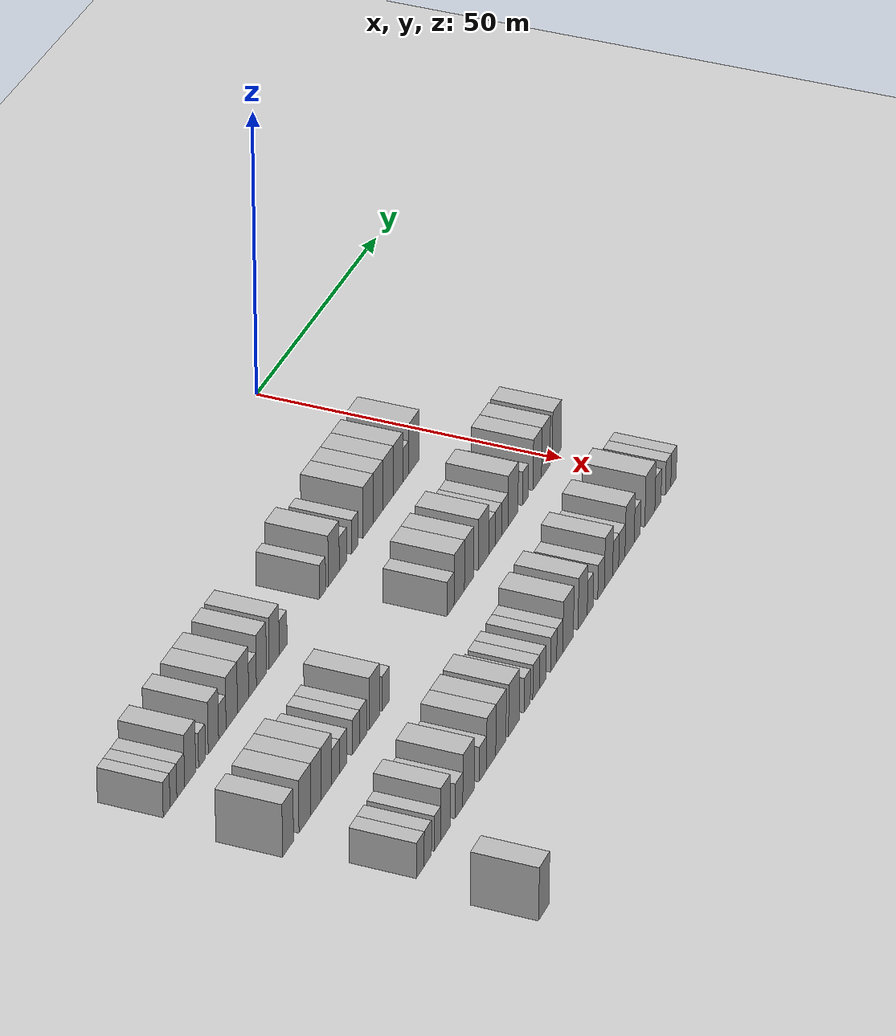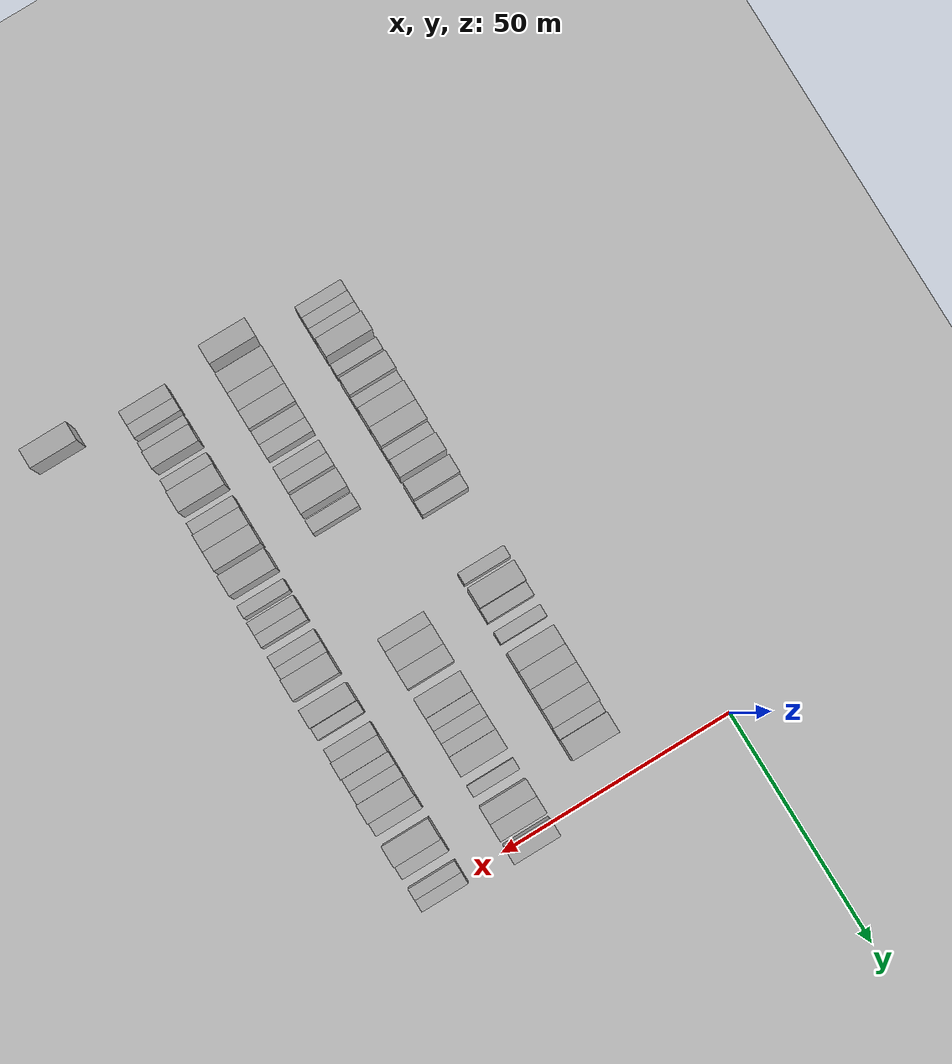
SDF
<sdf version="1.6">
 <world name="default">
  <include><name>ground_plane_1</name><uri>model://HANNAS_ground_plane</uri></include>
  <model name="building_67">
   <static>1</static>
   <pose>25.0000 -105.3900 0 0.000000 0.000000 0.000000</pose>
   <link name="link">
    <pose>0 0 3.00 0 0 0</pose>
    <collision name="collision"><geometry><box><size>10.0000 2.4034 6.0000</size></box></geometry></collision>
    <visual name="visual">
     <cast_shadows>0</cast_shadows>
     <geometry><box><size>10.0000 2.4034 6.0000</size></box></geometry>
     <material>
      <script>
       <uri>model://HANNAS_wall/materials/scripts</uri>
       <uri>model://HANNAS_wall/materials/textures</uri>
       <name>vrc/HANNAS_wall</name>
      </script>
     </material>
    </visual>
   </link>
  </model>
  <model name="building_68">
   <static>1</static>
   <pose>25.0000 -102.9690 0 0.000000 0.000000 0.000000</pose>
   <link name="link">
    <pose>0 0 3.00 0 0 0</pose>
    <collision name="collision"><geometry><box><size>10.0000 2.4385 6.0000</size></box></geometry></collision>
    <visual name="visual">
     <cast_shadows>0</cast_shadows>
     <geometry><box><size>10.0000 2.4385 6.0000</size></box></geometry>
     <material>
      <script>
       <uri>model://HANNAS_wall/materials/scripts</uri>
       <uri>model://HANNAS_wall/materials/textures</uri>
       <name>vrc/HANNAS_wall</name>
      </script>
     </material>
    </visual>
   </link>
  </model>
  <model name="building_69">
   <static>1</static>
   <pose>25.0000 -100.3519 0 0.000000 0.000000 0.000000</pose>
   <link name="link">
    <pose>0 0 3.00 0 0 0</pose>
    <collision name="collision"><geometry><box><size>10.0000 2.7957 6.0000</size></box></geometry></collision>
    <visual name="visual">
     <cast_shadows>0</cast_shadows>
     <geometry><box><size>10.0000 2.7957 6.0000</size></box></geometry>
     <material>
      <script>
       <uri>model://HANNAS_wall/materials/scripts</uri>
       <uri>model://HANNAS_wall/materials/textures</uri>
       <name>vrc/HANNAS_wall</name>
      </script>
     </material>
    </visual>
   </link>
  </model>
  <model name="building_70">
   <static>1</static>
   <pose>25.0000 -96.9507 0 0.000000 0.000000 0.000000</pose>
   <link name="link">
    <pose>0 0 4.50 0 0 0</pose>
    <collision name="collision"><geometry><box><size>10.0000 4.0066 9.0000</size></box></geometry></collision>
    <visual name="visual">
     <cast_shadows>0</cast_shadows>
     <geometry><box><size>10.0000 4.0066 9.0000</size></box></geometry>
     <material>
      <script>
       <uri>model://HANNAS_wall/materials/scripts</uri>
       <uri>model://HANNAS_wall/materials/textures</uri>
       <name>vrc/HANNAS_wall</name>
      </script>
     </material>
    </visual>
   </link>
  </model>
  <model name="building_71">
   <static>1</static>
   <pose>25.0000 -92.6870 0 0.000000 0.000000 0.000000</pose>
   <link name="link">
    <pose>0 0 3.00 0 0 0</pose>
    <collision name="collision"><geometry><box><size>10.0000 2.5209 6.0000</size></box></geometry></collision>
    <visual name="visual">
     <cast_shadows>0</cast_shadows>
     <geometry><box><size>10.0000 2.5209 6.0000</size></box></geometry>
     <material>
      <script>
       <uri>model://HANNAS_wall/materials/scripts</uri>
       <uri>model://HANNAS_wall/materials/textures</uri>
       <name>vrc/HANNAS_wall</name>
      </script>
     </material>
    </visual>
   </link>
  </model>
  <model name="building_72">
   <static>1</static>
   <pose>25.0000 -88.5406 0 0.000000 0.000000 0.000000</pose>
   <link name="link">
    <pose>0 0 4.50 0 0 0</pose>
    <collision name="collision"><geometry><box><size>10.0000 3.7719 9.0000</size></box></geometry></collision>
    <visual name="visual">
     <cast_shadows>0</cast_shadows>
     <geometry><box><size>10.0000 3.7719 9.0000</size></box></geometry>
     <material>
      <script>
       <uri>model://HANNAS_wall/materials/scripts</uri>
       <uri>model://HANNAS_wall/materials/textures</uri>
       <name>vrc/HANNAS_wall</name>
      </script>
     </material>
    </visual>
   </link>
  </model>
  <model name="building_73">
   <static>1</static>
   <pose>25.0000 -85.2821 0 0.000000 0.000000 0.000000</pose>
   <link name="link">
    <pose>0 0 3.00 0 0 0</pose>
    <collision name="collision"><geometry><box><size>10.0000 2.7451 6.0000</size></box></geometry></collision>
    <visual name="visual">
     <cast_shadows>0</cast_shadows>
     <geometry><box><size>10.0000 2.7451 6.0000</size></box></geometry>
     <material>
      <script>
       <uri>model://HANNAS_wall/materials/scripts</uri>
       <uri>model://HANNAS_wall/materials/textures</uri>
       <name>vrc/HANNAS_wall</name>
      </script>
     </material>
    </visual>
   </link>
  </model>
  <model name="building_74">
   <static>1</static>
   <pose>25.0000 -81.8021 0 0.000000 0.000000 0.000000</pose>
   <link name="link">
    <pose>0 0 4.50 0 0 0</pose>
    <collision name="collision"><geometry><box><size>10.0000 4.2150 9.0000</size></box></geometry></collision>
    <visual name="visual">
     <cast_shadows>0</cast_shadows>
     <geometry><box><size>10.0000 4.2150 9.0000</size></box></geometry>
     <material>
      <script>
       <uri>model://HANNAS_wall/materials/scripts</uri>
       <uri>model://HANNAS_wall/materials/textures</uri>
       <name>vrc/HANNAS_wall</name>
      </script>
     </material>
    </visual>
   </link>
  </model>
  <model name="building_75">
   <static>1</static>
   <pose>25.0000 -77.6193 0 0.000000 0.000000 0.000000</pose>
   <link name="link">
    <pose>0 0 4.50 0 0 0</pose>
    <collision name="collision"><geometry><box><size>10.0000 4.1505 9.0000</size></box></geometry></collision>
    <visual name="visual">
     <cast_shadows>0</cast_shadows>
     <geometry><box><size>10.0000 4.1505 9.0000</size></box></geometry>
     <material>
      <script>
       <uri>model://HANNAS_wall/materials/scripts</uri>
       <uri>model://HANNAS_wall/materials/textures</uri>
       <name>vrc/HANNAS_wall</name>
      </script>
     </material>
    </visual>
   </link>
  </model>
  <model name="building_76">
   <static>1</static>
   <pose>25.0000 -74.0915 0 0.000000 0.000000 0.000000</pose>
   <link name="link">
    <pose>0 0 3.00 0 0 0</pose>
    <collision name="collision"><geometry><box><size>10.0000 2.9051 6.0000</size></box></geometry></collision>
    <visual name="visual">
     <cast_shadows>0</cast_shadows>
     <geometry><box><size>10.0000 2.9051 6.0000</size></box></geometry>
     <material>
      <script>
       <uri>model://HANNAS_wall/materials/scripts</uri>
       <uri>model://HANNAS_wall/materials/textures</uri>
       <name>vrc/HANNAS_wall</name>
      </script>
     </material>
    </visual>
   </link>
  </model>
  <model name="building_77">
   <static>1</static>
   <pose>25.0000 -70.7532 0 0.000000 0.000000 0.000000</pose>
   <link name="link">
    <pose>0 0 4.50 0 0 0</pose>
    <collision name="collision"><geometry><box><size>10.0000 3.7714 9.0000</size></box></geometry></collision>
    <visual name="visual">
     <cast_shadows>0</cast_shadows>
     <geometry><box><size>10.0000 3.7714 9.0000</size></box></geometry>
     <material>
      <script>
       <uri>model://HANNAS_wall/materials/scripts</uri>
       <uri>model://HANNAS_wall/materials/textures</uri>
       <name>vrc/HANNAS_wall</name>
      </script>
     </material>
    </visual>
   </link>
  </model>
  <model name="building_78">
   <static>1</static>
   <pose>25.0000 -65.9466 0 0.000000 0.000000 0.000000</pose>
   <link name="link">
    <pose>0 0 4.50 0 0 0</pose>
    <collision name="collision"><geometry><box><size>10.0000 3.8419 9.0000</size></box></geometry></collision>
    <visual name="visual">
     <cast_shadows>0</cast_shadows>
     <geometry><box><size>10.0000 3.8419 9.0000</size></box></geometry>
     <material>
      <script>
       <uri>model://HANNAS_wall/materials/scripts</uri>
       <uri>model://HANNAS_wall/materials/textures</uri>
       <name>vrc/HANNAS_wall</name>
      </script>
     </material>
    </visual>
   </link>
  </model>
  <model name="building_79">
   <static>1</static>
   <pose>25.0000 -62.5279 0 0.000000 0.000000 0.000000</pose>
   <link name="link">
    <pose>0 0 3.00 0 0 0</pose>
    <collision name="collision"><geometry><box><size>10.0000 2.9954 6.0000</size></box></geometry></collision>
    <visual name="visual">
     <cast_shadows>0</cast_shadows>
     <geometry><box><size>10.0000 2.9954 6.0000</size></box></geometry>
     <material>
      <script>
       <uri>model://HANNAS_wall/materials/scripts</uri>
       <uri>model://HANNAS_wall/materials/textures</uri>
       <name>vrc/HANNAS_wall</name>
      </script>
     </material>
    </visual>
   </link>
  </model>
  <model name="building_80">
   <static>1</static>
   <pose>25.0000 -47.3221 0 0.000000 0.000000 0.000000</pose>
   <link name="link">
    <pose>0 0 3.00 0 0 0</pose>
    <collision name="collision"><geometry><box><size>10.0000 2.4721 6.0000</size></box></geometry></collision>
    <visual name="visual">
     <cast_shadows>0</cast_shadows>
     <geometry><box><size>10.0000 2.4721 6.0000</size></box></geometry>
     <material>
      <script>
       <uri>model://HANNAS_wall/materials/scripts</uri>
       <uri>model://HANNAS_wall/materials/textures</uri>
       <name>vrc/HANNAS_wall</name>
      </script>
     </material>
    </visual>
   </link>
  </model>
  <model name="building_81">
   <static>1</static>
   <pose>25.0000 -42.9015 0 0.000000 0.000000 0.000000</pose>
   <link name="link">
    <pose>0 0 4.50 0 0 0</pose>
    <collision name="collision"><geometry><box><size>10.0000 4.3690 9.0000</size></box></geometry></collision>
    <visual name="visual">
     <cast_shadows>0</cast_shadows>
     <geometry><box><size>10.0000 4.3690 9.0000</size></box></geometry>
     <material>
      <script>
       <uri>model://HANNAS_wall/materials/scripts</uri>
       <uri>model://HANNAS_wall/materials/textures</uri>
       <name>vrc/HANNAS_wall</name>
      </script>
     </material>
    </visual>
   </link>
  </model>
  <model name="building_82">
   <static>1</static>
   <pose>25.0000 -39.2447 0 0.000000 0.000000 0.000000</pose>
   <link name="link">
    <pose>0 0 3.00 0 0 0</pose>
    <collision name="collision"><geometry><box><size>10.0000 2.9447 6.0000</size></box></geometry></collision>
    <visual name="visual">
     <cast_shadows>0</cast_shadows>
     <geometry><box><size>10.0000 2.9447 6.0000</size></box></geometry>
     <material>
      <script>
       <uri>model://HANNAS_wall/materials/scripts</uri>
       <uri>model://HANNAS_wall/materials/textures</uri>
       <name>vrc/HANNAS_wall</name>
      </script>
     </material>
    </visual>
   </link>
  </model>
  <model name="building_83">
   <static>1</static>
   <pose>25.0000 -34.4802 0 0.000000 0.000000 0.000000</pose>
   <link name="link">
    <pose>0 0 3.00 0 0 0</pose>
    <collision name="collision"><geometry><box><size>10.0000 2.5842 6.0000</size></box></geometry></collision>
    <visual name="visual">
     <cast_shadows>0</cast_shadows>
     <geometry><box><size>10.0000 2.5842 6.0000</size></box></geometry>
     <material>
      <script>
       <uri>model://HANNAS_wall/materials/scripts</uri>
       <uri>model://HANNAS_wall/materials/textures</uri>
       <name>vrc/HANNAS_wall</name>
      </script>
     </material>
    </visual>
   </link>
  </model>
  <model name="building_84">
   <static>1</static>
   <pose>25.0000 -29.1527 0 0.000000 0.000000 0.000000</pose>
   <link name="link">
    <pose>0 0 4.50 0 0 0</pose>
    <collision name="collision"><geometry><box><size>10.0000 4.0708 9.0000</size></box></geometry></collision>
    <visual name="visual">
     <cast_shadows>0</cast_shadows>
     <geometry><box><size>10.0000 4.0708 9.0000</size></box></geometry>
     <material>
      <script>
       <uri>model://HANNAS_wall/materials/scripts</uri>
       <uri>model://HANNAS_wall/materials/textures</uri>
       <name>vrc/HANNAS_wall</name>
      </script>
     </material>
    </visual>
   </link>
  </model>
  <model name="building_85">
   <static>1</static>
   <pose>25.0000 -25.1547 0 0.000000 0.000000 0.000000</pose>
   <link name="link">
    <pose>0 0 4.50 0 0 0</pose>
    <collision name="collision"><geometry><box><size>10.0000 3.9250 9.0000</size></box></geometry></collision>
    <visual name="visual">
     <cast_shadows>0</cast_shadows>
     <geometry><box><size>10.0000 3.9250 9.0000</size></box></geometry>
     <material>
      <script>
       <uri>model://HANNAS_wall/materials/scripts</uri>
       <uri>model://HANNAS_wall/materials/textures</uri>
       <name>vrc/HANNAS_wall</name>
      </script>
     </material>
    </visual>
   </link>
  </model>
  <model name="building_86">
   <static>1</static>
   <pose>25.0000 -21.0648 0 0.000000 0.000000 0.000000</pose>
   <link name="link">
    <pose>0 0 4.50 0 0 0</pose>
    <collision name="collision"><geometry><box><size>10.0000 4.2548 9.0000</size></box></geometry></collision>
    <visual name="visual">
     <cast_shadows>0</cast_shadows>
     <geometry><box><size>10.0000 4.2548 9.0000</size></box></geometry>
     <material>
      <script>
       <uri>model://HANNAS_wall/materials/scripts</uri>
       <uri>model://HANNAS_wall/materials/textures</uri>
       <name>vrc/HANNAS_wall</name>
      </script>
     </material>
    </visual>
   </link>
  </model>
  <model name="building_87">
   <static>1</static>
   <pose>25.0000 -16.9578 0 0.000000 0.000000 0.000000</pose>
   <link name="link">
    <pose>0 0 4.50 0 0 0</pose>
    <collision name="collision"><geometry><box><size>10.0000 3.9593 9.0000</size></box></geometry></collision>
    <visual name="visual">
     <cast_shadows>0</cast_shadows>
     <geometry><box><size>10.0000 3.9593 9.0000</size></box></geometry>
     <material>
      <script>
       <uri>model://HANNAS_wall/materials/scripts</uri>
       <uri>model://HANNAS_wall/materials/textures</uri>
       <name>vrc/HANNAS_wall</name>
      </script>
     </material>
    </visual>
   </link>
  </model>
  <model name="building_88">
   <static>1</static>
   <pose>25.0000 -13.7613 0 0.000000 0.000000 0.000000</pose>
   <link name="link">
    <pose>0 0 3.00 0 0 0</pose>
    <collision name="collision"><geometry><box><size>10.0000 2.4338 6.0000</size></box></geometry></collision>
    <visual name="visual">
     <cast_shadows>0</cast_shadows>
     <geometry><box><size>10.0000 2.4338 6.0000</size></box></geometry>
     <material>
      <script>
       <uri>model://HANNAS_wall/materials/scripts</uri>
       <uri>model://HANNAS_wall/materials/textures</uri>
       <name>vrc/HANNAS_wall</name>
      </script>
     </material>
    </visual>
   </link>
  </model>
  <model name="building_89">
   <static>1</static>
   <pose>25.0000 -10.3332 0 0.000000 0.000000 0.000000</pose>
   <link name="link">
    <pose>0 0 4.50 0 0 0</pose>
    <collision name="collision"><geometry><box><size>10.0000 4.4223 9.0000</size></box></geometry></collision>
    <visual name="visual">
     <cast_shadows>0</cast_shadows>
     <geometry><box><size>10.0000 4.4223 9.0000</size></box></geometry>
     <material>
      <script>
       <uri>model://HANNAS_wall/materials/scripts</uri>
       <uri>model://HANNAS_wall/materials/textures</uri>
       <name>vrc/HANNAS_wall</name>
      </script>
     </material>
    </visual>
   </link>
  </model>
  <model name="building_234">
   <static>1</static>
   <pose>44.0000 -107.0728 0 0.000000 0.000000 0.000000</pose>
   <link name="link">
    <pose>0 0 4.50 0 0 0</pose>
    <collision name="collision"><geometry><box><size>10.0000 4.0145 9.0000</size></box></geometry></collision>
    <visual name="visual">
     <cast_shadows>0</cast_shadows>
     <geometry><box><size>10.0000 4.0145 9.0000</size></box></geometry>
     <material>
      <script>
       <uri>model://HANNAS_wall/materials/scripts</uri>
       <uri>model://HANNAS_wall/materials/textures</uri>
       <name>vrc/HANNAS_wall</name>
      </script>
     </material>
    </visual>
   </link>
  </model>
  <model name="building_235">
   <static>1</static>
   <pose>44.0000 -100.8949 0 0.000000 0.000000 0.000000</pose>
   <link name="link">
    <pose>0 0 4.50 0 0 0</pose>
    <collision name="collision"><geometry><box><size>10.0000 4.3414 9.0000</size></box></geometry></collision>
    <visual name="visual">
     <cast_shadows>0</cast_shadows>
     <geometry><box><size>10.0000 4.3414 9.0000</size></box></geometry>
     <material>
      <script>
       <uri>model://HANNAS_wall/materials/scripts</uri>
       <uri>model://HANNAS_wall/materials/textures</uri>
       <name>vrc/HANNAS_wall</name>
      </script>
     </material>
    </visual>
   </link>
  </model>
  <model name="building_236">
   <static>1</static>
   <pose>44.0000 -96.7959 0 0.000000 0.000000 0.000000</pose>
   <link name="link">
    <pose>0 0 4.50 0 0 0</pose>
    <collision name="collision"><geometry><box><size>10.0000 3.8564 9.0000</size></box></geometry></collision>
    <visual name="visual">
     <cast_shadows>0</cast_shadows>
     <geometry><box><size>10.0000 3.8564 9.0000</size></box></geometry>
     <material>
      <script>
       <uri>model://HANNAS_wall/materials/scripts</uri>
       <uri>model://HANNAS_wall/materials/textures</uri>
       <name>vrc/HANNAS_wall</name>
      </script>
     </material>
    </visual>
   </link>
  </model>
  <model name="building_237">
   <static>1</static>
   <pose>44.0000 -92.9147 0 0.000000 0.000000 0.000000</pose>
   <link name="link">
    <pose>0 0 4.50 0 0 0</pose>
    <collision name="collision"><geometry><box><size>10.0000 3.9060 9.0000</size></box></geometry></collision>
    <visual name="visual">
     <cast_shadows>0</cast_shadows>
     <geometry><box><size>10.0000 3.9060 9.0000</size></box></geometry>
     <material>
      <script>
       <uri>model://HANNAS_wall/materials/scripts</uri>
       <uri>model://HANNAS_wall/materials/textures</uri>
       <name>vrc/HANNAS_wall</name>
      </script>
     </material>
    </visual>
   </link>
  </model>
  <model name="building_238">
   <static>1</static>
   <pose>44.0000 -89.4872 0 0.000000 0.000000 0.000000</pose>
   <link name="link">
    <pose>0 0 3.00 0 0 0</pose>
    <collision name="collision"><geometry><box><size>10.0000 2.9491 6.0000</size></box></geometry></collision>
    <visual name="visual">
     <cast_shadows>0</cast_shadows>
     <geometry><box><size>10.0000 2.9491 6.0000</size></box></geometry>
     <material>
      <script>
       <uri>model://HANNAS_wall/materials/scripts</uri>
       <uri>model://HANNAS_wall/materials/textures</uri>
       <name>vrc/HANNAS_wall</name>
      </script>
     </material>
    </visual>
   </link>
  </model>
  <model name="building_239">
   <static>1</static>
   <pose>44.0000 -86.5484 0 0.000000 0.000000 0.000000</pose>
   <link name="link">
    <pose>0 0 3.00 0 0 0</pose>
    <collision name="collision"><geometry><box><size>10.0000 2.9286 6.0000</size></box></geometry></collision>
    <visual name="visual">
     <cast_shadows>0</cast_shadows>
     <geometry><box><size>10.0000 2.9286 6.0000</size></box></geometry>
     <material>
      <script>
       <uri>model://HANNAS_wall/materials/scripts</uri>
       <uri>model://HANNAS_wall/materials/textures</uri>
       <name>vrc/HANNAS_wall</name>
      </script>
     </material>
    </visual>
   </link>
  </model>
  <model name="building_240">
   <static>1</static>
   <pose>44.0000 -81.7106 0 0.000000 0.000000 0.000000</pose>
   <link name="link">
    <pose>0 0 3.00 0 0 0</pose>
    <collision name="collision"><geometry><box><size>10.0000 2.7469 6.0000</size></box></geometry></collision>
    <visual name="visual">
     <cast_shadows>0</cast_shadows>
     <geometry><box><size>10.0000 2.7469 6.0000</size></box></geometry>
     <material>
      <script>
       <uri>model://HANNAS_wall/materials/scripts</uri>
       <uri>model://HANNAS_wall/materials/textures</uri>
       <name>vrc/HANNAS_wall</name>
      </script>
     </material>
    </visual>
   </link>
  </model>
  <model name="building_241">
   <static>1</static>
   <pose>44.0000 -78.9650 0 0.000000 0.000000 0.000000</pose>
   <link name="link">
    <pose>0 0 3.00 0 0 0</pose>
    <collision name="collision"><geometry><box><size>10.0000 2.7444 6.0000</size></box></geometry></collision>
    <visual name="visual">
     <cast_shadows>0</cast_shadows>
     <geometry><box><size>10.0000 2.7444 6.0000</size></box></geometry>
     <material>
      <script>
       <uri>model://HANNAS_wall/materials/scripts</uri>
       <uri>model://HANNAS_wall/materials/textures</uri>
       <name>vrc/HANNAS_wall</name>
      </script>
     </material>
    </visual>
   </link>
  </model>
  <model name="building_242">
   <static>1</static>
   <pose>44.0000 -74.5951 0 0.000000 0.000000 0.000000</pose>
   <link name="link">
    <pose>0 0 4.50 0 0 0</pose>
    <collision name="collision"><geometry><box><size>10.0000 3.9955 9.0000</size></box></geometry></collision>
    <visual name="visual">
     <cast_shadows>0</cast_shadows>
     <geometry><box><size>10.0000 3.9955 9.0000</size></box></geometry>
     <material>
      <script>
       <uri>model://HANNAS_wall/materials/scripts</uri>
       <uri>model://HANNAS_wall/materials/textures</uri>
       <name>vrc/HANNAS_wall</name>
      </script>
     </material>
    </visual>
   </link>
  </model>
  <model name="building_243">
   <static>1</static>
   <pose>44.0000 -70.1585 0 0.000000 0.000000 0.000000</pose>
   <link name="link">
    <pose>0 0 3.00 0 0 0</pose>
    <collision name="collision"><geometry><box><size>10.0000 2.8778 6.0000</size></box></geometry></collision>
    <visual name="visual">
     <cast_shadows>0</cast_shadows>
     <geometry><box><size>10.0000 2.8778 6.0000</size></box></geometry>
     <material>
      <script>
       <uri>model://HANNAS_wall/materials/scripts</uri>
       <uri>model://HANNAS_wall/materials/textures</uri>
       <name>vrc/HANNAS_wall</name>
      </script>
     </material>
    </visual>
   </link>
  </model>
  <model name="building_244">
   <static>1</static>
   <pose>44.0000 -44.3955 0 0.000000 0.000000 0.000000</pose>
   <link name="link">
    <pose>0 0 3.00 0 0 0</pose>
    <collision name="collision"><geometry><box><size>10.0000 2.8827 6.0000</size></box></geometry></collision>
    <visual name="visual">
     <cast_shadows>0</cast_shadows>
     <geometry><box><size>10.0000 2.8827 6.0000</size></box></geometry>
     <material>
      <script>
       <uri>model://HANNAS_wall/materials/scripts</uri>
       <uri>model://HANNAS_wall/materials/textures</uri>
       <name>vrc/HANNAS_wall</name>
      </script>
     </material>
    </visual>
   </link>
  </model>
  <model name="building_245">
   <static>1</static>
   <pose>44.0000 -40.8205 0 0.000000 0.000000 0.000000</pose>
   <link name="link">
    <pose>0 0 4.50 0 0 0</pose>
    <collision name="collision"><geometry><box><size>10.0000 4.2674 9.0000</size></box></geometry></collision>
    <visual name="visual">
     <cast_shadows>0</cast_shadows>
     <geometry><box><size>10.0000 4.2674 9.0000</size></box></geometry>
     <material>
      <script>
       <uri>model://HANNAS_wall/materials/scripts</uri>
       <uri>model://HANNAS_wall/materials/textures</uri>
       <name>vrc/HANNAS_wall</name>
      </script>
     </material>
    </visual>
   </link>
  </model>
  <model name="building_246">
   <static>1</static>
   <pose>44.0000 -36.8082 0 0.000000 0.000000 0.000000</pose>
   <link name="link">
    <pose>0 0 4.50 0 0 0</pose>
    <collision name="collision"><geometry><box><size>10.0000 3.7572 9.0000</size></box></geometry></collision>
    <visual name="visual">
     <cast_shadows>0</cast_shadows>
     <geometry><box><size>10.0000 3.7572 9.0000</size></box></geometry>
     <material>
      <script>
       <uri>model://HANNAS_wall/materials/scripts</uri>
       <uri>model://HANNAS_wall/materials/textures</uri>
       <name>vrc/HANNAS_wall</name>
      </script>
     </material>
    </visual>
   </link>
  </model>
  <model name="building_247">
   <static>1</static>
   <pose>44.0000 -30.7887 0 0.000000 0.000000 0.000000</pose>
   <link name="link">
    <pose>0 0 4.50 0 0 0</pose>
    <collision name="collision"><geometry><box><size>10.0000 4.2819 9.0000</size></box></geometry></collision>
    <visual name="visual">
     <cast_shadows>0</cast_shadows>
     <geometry><box><size>10.0000 4.2819 9.0000</size></box></geometry>
     <material>
      <script>
       <uri>model://HANNAS_wall/materials/scripts</uri>
       <uri>model://HANNAS_wall/materials/textures</uri>
       <name>vrc/HANNAS_wall</name>
      </script>
     </material>
    </visual>
   </link>
  </model>
  <model name="building_248">
   <static>1</static>
   <pose>44.0000 -27.3065 0 0.000000 0.000000 0.000000</pose>
   <link name="link">
    <pose>0 0 3.00 0 0 0</pose>
    <collision name="collision"><geometry><box><size>10.0000 2.6823 6.0000</size></box></geometry></collision>
    <visual name="visual">
     <cast_shadows>0</cast_shadows>
     <geometry><box><size>10.0000 2.6823 6.0000</size></box></geometry>
     <material>
      <script>
       <uri>model://HANNAS_wall/materials/scripts</uri>
       <uri>model://HANNAS_wall/materials/textures</uri>
       <name>vrc/HANNAS_wall</name>
      </script>
     </material>
    </visual>
   </link>
  </model>
  <model name="building_249">
   <static>1</static>
   <pose>44.0000 -24.6082 0 0.000000 0.000000 0.000000</pose>
   <link name="link">
    <pose>0 0 3.00 0 0 0</pose>
    <collision name="collision"><geometry><box><size>10.0000 2.7143 6.0000</size></box></geometry></collision>
    <visual name="visual">
     <cast_shadows>0</cast_shadows>
     <geometry><box><size>10.0000 2.7143 6.0000</size></box></geometry>
     <material>
      <script>
       <uri>model://HANNAS_wall/materials/scripts</uri>
       <uri>model://HANNAS_wall/materials/textures</uri>
       <name>vrc/HANNAS_wall</name>
      </script>
     </material>
    </visual>
   </link>
  </model>
  <model name="building_250">
   <static>1</static>
   <pose>44.0000 -21.8479 0 0.000000 0.000000 0.000000</pose>
   <link name="link">
    <pose>0 0 3.00 0 0 0</pose>
    <collision name="collision"><geometry><box><size>10.0000 2.8063 6.0000</size></box></geometry></collision>
    <visual name="visual">
     <cast_shadows>0</cast_shadows>
     <geometry><box><size>10.0000 2.8063 6.0000</size></box></geometry>
     <material>
      <script>
       <uri>model://HANNAS_wall/materials/scripts</uri>
       <uri>model://HANNAS_wall/materials/textures</uri>
       <name>vrc/HANNAS_wall</name>
      </script>
     </material>
    </visual>
   </link>
  </model>
  <model name="building_251">
   <static>1</static>
   <pose>44.0000 -18.3447 0 0.000000 0.000000 0.000000</pose>
   <link name="link">
    <pose>0 0 4.50 0 0 0</pose>
    <collision name="collision"><geometry><box><size>10.0000 4.2001 9.0000</size></box></geometry></collision>
    <visual name="visual">
     <cast_shadows>0</cast_shadows>
     <geometry><box><size>10.0000 4.2001 9.0000</size></box></geometry>
     <material>
      <script>
       <uri>model://HANNAS_wall/materials/scripts</uri>
       <uri>model://HANNAS_wall/materials/textures</uri>
       <name>vrc/HANNAS_wall</name>
      </script>
     </material>
    </visual>
   </link>
  </model>
  <model name="building_252">
   <static>1</static>
   <pose>44.0000 -13.0252 0 0.000000 0.000000 0.000000</pose>
   <link name="link">
    <pose>0 0 3.00 0 0 0</pose>
    <collision name="collision"><geometry><box><size>10.0000 2.4390 6.0000</size></box></geometry></collision>
    <visual name="visual">
     <cast_shadows>0</cast_shadows>
     <geometry><box><size>10.0000 2.4390 6.0000</size></box></geometry>
     <material>
      <script>
       <uri>model://HANNAS_wall/materials/scripts</uri>
       <uri>model://HANNAS_wall/materials/textures</uri>
       <name>vrc/HANNAS_wall</name>
      </script>
     </material>
    </visual>
   </link>
  </model>
  <model name="building_253">
   <static>1</static>
   <pose>44.0000 -7.9617 0 0.000000 0.000000 0.000000</pose>
   <link name="link">
    <pose>0 0 4.50 0 0 0</pose>
    <collision name="collision"><geometry><box><size>10.0000 3.6881 9.0000</size></box></geometry></collision>
    <visual name="visual">
     <cast_shadows>0</cast_shadows>
     <geometry><box><size>10.0000 3.6881 9.0000</size></box></geometry>
     <material>
      <script>
       <uri>model://HANNAS_wall/materials/scripts</uri>
       <uri>model://HANNAS_wall/materials/textures</uri>
       <name>vrc/HANNAS_wall</name>
      </script>
     </material>
    </visual>
   </link>
  </model>
  <model name="building_254">
   <static>1</static>
   <pose>44.0000 -4.2919 0 0.000000 0.000000 0.000000</pose>
   <link name="link">
    <pose>0 0 4.50 0 0 0</pose>
    <collision name="collision"><geometry><box><size>10.0000 3.6514 9.0000</size></box></geometry></collision>
    <visual name="visual">
     <cast_shadows>0</cast_shadows>
     <geometry><box><size>10.0000 3.6514 9.0000</size></box></geometry>
     <material>
      <script>
       <uri>model://HANNAS_wall/materials/scripts</uri>
       <uri>model://HANNAS_wall/materials/textures</uri>
       <name>vrc/HANNAS_wall</name>
      </script>
     </material>
    </visual>
   </link>
  </model>
  <model name="building_255">
   <static>1</static>
   <pose>44.0000 0.4565 0 0.000000 0.000000 0.000000</pose>
   <link name="link">
    <pose>0 0 4.50 0 0 0</pose>
    <collision name="collision"><geometry><box><size>10.0000 3.8454 9.0000</size></box></geometry></collision>
    <visual name="visual">
     <cast_shadows>0</cast_shadows>
     <geometry><box><size>10.0000 3.8454 9.0000</size></box></geometry>
     <material>
      <script>
       <uri>model://HANNAS_wall/materials/scripts</uri>
       <uri>model://HANNAS_wall/materials/textures</uri>
       <name>vrc/HANNAS_wall</name>
      </script>
     </material>
    </visual>
   </link>
  </model>
  <model name="building_396">
   <static>1</static>
   <pose>63.0000 -105.3975 0 0.000000 0.000000 0.000000</pose>
   <link name="link">
    <pose>0 0 3.00 0 0 0</pose>
    <collision name="collision"><geometry><box><size>10.0000 2.9464 6.0000</size></box></geometry></collision>
    <visual name="visual">
     <cast_shadows>0</cast_shadows>
     <geometry><box><size>10.0000 2.9464 6.0000</size></box></geometry>
     <material>
      <script>
       <uri>model://HANNAS_wall/materials/scripts</uri>
       <uri>model://HANNAS_wall/materials/textures</uri>
       <name>vrc/HANNAS_wall</name>
      </script>
     </material>
    </visual>
   </link>
  </model>
  <model name="building_397">
   <static>1</static>
   <pose>63.0000 -102.5312 0 0.000000 0.000000 0.000000</pose>
   <link name="link">
    <pose>0 0 3.00 0 0 0</pose>
    <collision name="collision"><geometry><box><size>10.0000 2.7861 6.0000</size></box></geometry></collision>
    <visual name="visual">
     <cast_shadows>0</cast_shadows>
     <geometry><box><size>10.0000 2.7861 6.0000</size></box></geometry>
     <material>
      <script>
       <uri>model://HANNAS_wall/materials/scripts</uri>
       <uri>model://HANNAS_wall/materials/textures</uri>
       <name>vrc/HANNAS_wall</name>
      </script>
     </material>
    </visual>
   </link>
  </model>
  <model name="building_398">
   <static>1</static>
   <pose>63.0000 -98.8743 0 0.000000 0.000000 0.000000</pose>
   <link name="link">
    <pose>0 0 3.00 0 0 0</pose>
    <collision name="collision"><geometry><box><size>10.0000 2.5277 6.0000</size></box></geometry></collision>
    <visual name="visual">
     <cast_shadows>0</cast_shadows>
     <geometry><box><size>10.0000 2.5277 6.0000</size></box></geometry>
     <material>
      <script>
       <uri>model://HANNAS_wall/materials/scripts</uri>
       <uri>model://HANNAS_wall/materials/textures</uri>
       <name>vrc/HANNAS_wall</name>
      </script>
     </material>
    </visual>
   </link>
  </model>
  <model name="building_399">
   <static>1</static>
   <pose>63.0000 -95.7951 0 0.000000 0.000000 0.000000</pose>
   <link name="link">
    <pose>0 0 4.50 0 0 0</pose>
    <collision name="collision"><geometry><box><size>10.0000 3.6306 9.0000</size></box></geometry></collision>
    <visual name="visual">
     <cast_shadows>0</cast_shadows>
     <geometry><box><size>10.0000 3.6306 9.0000</size></box></geometry>
     <material>
      <script>
       <uri>model://HANNAS_wall/materials/scripts</uri>
       <uri>model://HANNAS_wall/materials/textures</uri>
       <name>vrc/HANNAS_wall</name>
      </script>
     </material>
    </visual>
   </link>
  </model>
  <model name="building_400">
   <static>1</static>
   <pose>63.0000 -90.5098 0 0.000000 0.000000 0.000000</pose>
   <link name="link">
    <pose>0 0 3.00 0 0 0</pose>
    <collision name="collision"><geometry><box><size>10.0000 2.9401 6.0000</size></box></geometry></collision>
    <visual name="visual">
     <cast_shadows>0</cast_shadows>
     <geometry><box><size>10.0000 2.9401 6.0000</size></box></geometry>
     <material>
      <script>
       <uri>model://HANNAS_wall/materials/scripts</uri>
       <uri>model://HANNAS_wall/materials/textures</uri>
       <name>vrc/HANNAS_wall</name>
      </script>
     </material>
    </visual>
   </link>
  </model>
  <model name="building_401">
   <static>1</static>
   <pose>63.0000 -86.8113 0 0.000000 0.000000 0.000000</pose>
   <link name="link">
    <pose>0 0 4.50 0 0 0</pose>
    <collision name="collision"><geometry><box><size>10.0000 4.4569 9.0000</size></box></geometry></collision>
    <visual name="visual">
     <cast_shadows>0</cast_shadows>
     <geometry><box><size>10.0000 4.4569 9.0000</size></box></geometry>
     <material>
      <script>
       <uri>model://HANNAS_wall/materials/scripts</uri>
       <uri>model://HANNAS_wall/materials/textures</uri>
       <name>vrc/HANNAS_wall</name>
      </script>
     </material>
    </visual>
   </link>
  </model>
  <model name="building_402">
   <static>1</static>
   <pose>63.0000 -81.1262 0 0.000000 0.000000 0.000000</pose>
   <link name="link">
    <pose>0 0 3.00 0 0 0</pose>
    <collision name="collision"><geometry><box><size>10.0000 2.9134 6.0000</size></box></geometry></collision>
    <visual name="visual">
     <cast_shadows>0</cast_shadows>
     <geometry><box><size>10.0000 2.9134 6.0000</size></box></geometry>
     <material>
      <script>
       <uri>model://HANNAS_wall/materials/scripts</uri>
       <uri>model://HANNAS_wall/materials/textures</uri>
       <name>vrc/HANNAS_wall</name>
      </script>
     </material>
    </visual>
   </link>
  </model>
  <model name="building_403">
   <static>1</static>
   <pose>63.0000 -77.8367 0 0.000000 0.000000 0.000000</pose>
   <link name="link">
    <pose>0 0 4.50 0 0 0</pose>
    <collision name="collision"><geometry><box><size>10.0000 3.6655 9.0000</size></box></geometry></collision>
    <visual name="visual">
     <cast_shadows>0</cast_shadows>
     <geometry><box><size>10.0000 3.6655 9.0000</size></box></geometry>
     <material>
      <script>
       <uri>model://HANNAS_wall/materials/scripts</uri>
       <uri>model://HANNAS_wall/materials/textures</uri>
       <name>vrc/HANNAS_wall</name>
      </script>
     </material>
    </visual>
   </link>
  </model>
  <model name="building_404">
   <static>1</static>
   <pose>63.0000 -73.9444 0 0.000000 0.000000 0.000000</pose>
   <link name="link">
    <pose>0 0 4.50 0 0 0</pose>
    <collision name="collision"><geometry><box><size>10.0000 4.1192 9.0000</size></box></geometry></collision>
    <visual name="visual">
     <cast_shadows>0</cast_shadows>
     <geometry><box><size>10.0000 4.1192 9.0000</size></box></geometry>
     <material>
      <script>
       <uri>model://HANNAS_wall/materials/scripts</uri>
       <uri>model://HANNAS_wall/materials/textures</uri>
       <name>vrc/HANNAS_wall</name>
      </script>
     </material>
    </visual>
   </link>
  </model>
  <model name="building_405">
   <static>1</static>
   <pose>63.0000 -68.7126 0 0.000000 0.000000 0.000000</pose>
   <link name="link">
    <pose>0 0 4.50 0 0 0</pose>
    <collision name="collision"><geometry><box><size>10.0000 4.3445 9.0000</size></box></geometry></collision>
    <visual name="visual">
     <cast_shadows>0</cast_shadows>
     <geometry><box><size>10.0000 4.3445 9.0000</size></box></geometry>
     <material>
      <script>
       <uri>model://HANNAS_wall/materials/scripts</uri>
       <uri>model://HANNAS_wall/materials/textures</uri>
       <name>vrc/HANNAS_wall</name>
      </script>
     </material>
    </visual>
   </link>
  </model>
  <model name="building_406">
   <static>1</static>
   <pose>63.0000 -63.2694 0 0.000000 0.000000 0.000000</pose>
   <link name="link">
    <pose>0 0 3.00 0 0 0</pose>
    <collision name="collision"><geometry><box><size>10.0000 2.5420 6.0000</size></box></geometry></collision>
    <visual name="visual">
     <cast_shadows>0</cast_shadows>
     <geometry><box><size>10.0000 2.5420 6.0000</size></box></geometry>
     <material>
      <script>
       <uri>model://HANNAS_wall/materials/scripts</uri>
       <uri>model://HANNAS_wall/materials/textures</uri>
       <name>vrc/HANNAS_wall</name>
      </script>
     </material>
    </visual>
   </link>
  </model>
  <model name="building_407">
   <static>1</static>
   <pose>63.0000 -59.6215 0 0.000000 0.000000 0.000000</pose>
   <link name="link">
    <pose>0 0 3.00 0 0 0</pose>
    <collision name="collision"><geometry><box><size>10.0000 2.7538 6.0000</size></box></geometry></collision>
    <visual name="visual">
     <cast_shadows>0</cast_shadows>
     <geometry><box><size>10.0000 2.7538 6.0000</size></box></geometry>
     <material>
      <script>
       <uri>model://HANNAS_wall/materials/scripts</uri>
       <uri>model://HANNAS_wall/materials/textures</uri>
       <name>vrc/HANNAS_wall</name>
      </script>
     </material>
    </visual>
   </link>
  </model>
  <model name="building_408">
   <static>1</static>
   <pose>63.0000 -56.9504 0 0.000000 0.000000 0.000000</pose>
   <link name="link">
    <pose>0 0 3.00 0 0 0</pose>
    <collision name="collision"><geometry><box><size>10.0000 2.5882 6.0000</size></box></geometry></collision>
    <visual name="visual">
     <cast_shadows>0</cast_shadows>
     <geometry><box><size>10.0000 2.5882 6.0000</size></box></geometry>
     <material>
      <script>
       <uri>model://HANNAS_wall/materials/scripts</uri>
       <uri>model://HANNAS_wall/materials/textures</uri>
       <name>vrc/HANNAS_wall</name>
      </script>
     </material>
    </visual>
   </link>
  </model>
  <model name="building_409">
   <static>1</static>
   <pose>63.0000 -52.3751 0 0.000000 0.000000 0.000000</pose>
   <link name="link">
    <pose>0 0 3.00 0 0 0</pose>
    <collision name="collision"><geometry><box><size>10.0000 2.5624 6.0000</size></box></geometry></collision>
    <visual name="visual">
     <cast_shadows>0</cast_shadows>
     <geometry><box><size>10.0000 2.5624 6.0000</size></box></geometry>
     <material>
      <script>
       <uri>model://HANNAS_wall/materials/scripts</uri>
       <uri>model://HANNAS_wall/materials/textures</uri>
       <name>vrc/HANNAS_wall</name>
      </script>
     </material>
    </visual>
   </link>
  </model>
  <model name="building_410">
   <static>1</static>
   <pose>63.0000 -49.8174 0 0.000000 0.000000 0.000000</pose>
   <link name="link">
    <pose>0 0 3.00 0 0 0</pose>
    <collision name="collision"><geometry><box><size>10.0000 2.5531 6.0000</size></box></geometry></collision>
    <visual name="visual">
     <cast_shadows>0</cast_shadows>
     <geometry><box><size>10.0000 2.5531 6.0000</size></box></geometry>
     <material>
      <script>
       <uri>model://HANNAS_wall/materials/scripts</uri>
       <uri>model://HANNAS_wall/materials/textures</uri>
       <name>vrc/HANNAS_wall</name>
      </script>
     </material>
    </visual>
   </link>
  </model>
  <model name="building_411">
   <static>1</static>
   <pose>63.0000 -46.3117 0 0.000000 0.000000 0.000000</pose>
   <link name="link">
    <pose>0 0 4.50 0 0 0</pose>
    <collision name="collision"><geometry><box><size>10.0000 4.4583 9.0000</size></box></geometry></collision>
    <visual name="visual">
     <cast_shadows>0</cast_shadows>
     <geometry><box><size>10.0000 4.4583 9.0000</size></box></geometry>
     <material>
      <script>
       <uri>model://HANNAS_wall/materials/scripts</uri>
       <uri>model://HANNAS_wall/materials/textures</uri>
       <name>vrc/HANNAS_wall</name>
      </script>
     </material>
    </visual>
   </link>
  </model>
  <model name="building_412">
   <static>1</static>
   <pose>63.0000 -40.1273 0 0.000000 0.000000 0.000000</pose>
   <link name="link">
    <pose>0 0 4.50 0 0 0</pose>
    <collision name="collision"><geometry><box><size>10.0000 3.9106 9.0000</size></box></geometry></collision>
    <visual name="visual">
     <cast_shadows>0</cast_shadows>
     <geometry><box><size>10.0000 3.9106 9.0000</size></box></geometry>
     <material>
      <script>
       <uri>model://HANNAS_wall/materials/scripts</uri>
       <uri>model://HANNAS_wall/materials/textures</uri>
       <name>vrc/HANNAS_wall</name>
      </script>
     </material>
    </visual>
   </link>
  </model>
  <model name="building_413">
   <static>1</static>
   <pose>63.0000 -36.9164 0 0.000000 0.000000 0.000000</pose>
   <link name="link">
    <pose>0 0 3.00 0 0 0</pose>
    <collision name="collision"><geometry><box><size>10.0000 2.5112 6.0000</size></box></geometry></collision>
    <visual name="visual">
     <cast_shadows>0</cast_shadows>
     <geometry><box><size>10.0000 2.5112 6.0000</size></box></geometry>
     <material>
      <script>
       <uri>model://HANNAS_wall/materials/scripts</uri>
       <uri>model://HANNAS_wall/materials/textures</uri>
       <name>vrc/HANNAS_wall</name>
      </script>
     </material>
    </visual>
   </link>
  </model>
  <model name="building_414">
   <static>1</static>
   <pose>63.0000 -32.2418 0 0.000000 0.000000 0.000000</pose>
   <link name="link">
    <pose>0 0 3.00 0 0 0</pose>
    <collision name="collision"><geometry><box><size>10.0000 2.8379 6.0000</size></box></geometry></collision>
    <visual name="visual">
     <cast_shadows>0</cast_shadows>
     <geometry><box><size>10.0000 2.8379 6.0000</size></box></geometry>
     <material>
      <script>
       <uri>model://HANNAS_wall/materials/scripts</uri>
       <uri>model://HANNAS_wall/materials/textures</uri>
       <name>vrc/HANNAS_wall</name>
      </script>
     </material>
    </visual>
   </link>
  </model>
  <model name="building_415">
   <static>1</static>
   <pose>63.0000 -29.0200 0 0.000000 0.000000 0.000000</pose>
   <link name="link">
    <pose>0 0 4.50 0 0 0</pose>
    <collision name="collision"><geometry><box><size>10.0000 3.6058 9.0000</size></box></geometry></collision>
    <visual name="visual">
     <cast_shadows>0</cast_shadows>
     <geometry><box><size>10.0000 3.6058 9.0000</size></box></geometry>
     <material>
      <script>
       <uri>model://HANNAS_wall/materials/scripts</uri>
       <uri>model://HANNAS_wall/materials/textures</uri>
       <name>vrc/HANNAS_wall</name>
      </script>
     </material>
    </visual>
   </link>
  </model>
  <model name="building_416">
   <static>1</static>
   <pose>63.0000 -25.9020 0 0.000000 0.000000 0.000000</pose>
   <link name="link">
    <pose>0 0 3.00 0 0 0</pose>
    <collision name="collision"><geometry><box><size>10.0000 2.6302 6.0000</size></box></geometry></collision>
    <visual name="visual">
     <cast_shadows>0</cast_shadows>
     <geometry><box><size>10.0000 2.6302 6.0000</size></box></geometry>
     <material>
      <script>
       <uri>model://HANNAS_wall/materials/scripts</uri>
       <uri>model://HANNAS_wall/materials/textures</uri>
       <name>vrc/HANNAS_wall</name>
      </script>
     </material>
    </visual>
   </link>
  </model>
  <model name="building_417">
   <static>1</static>
   <pose>63.0000 -23.2046 0 0.000000 0.000000 0.000000</pose>
   <link name="link">
    <pose>0 0 3.00 0 0 0</pose>
    <collision name="collision"><geometry><box><size>10.0000 2.7645 6.0000</size></box></geometry></collision>
    <visual name="visual">
     <cast_shadows>0</cast_shadows>
     <geometry><box><size>10.0000 2.7645 6.0000</size></box></geometry>
     <material>
      <script>
       <uri>model://HANNAS_wall/materials/scripts</uri>
       <uri>model://HANNAS_wall/materials/textures</uri>
       <name>vrc/HANNAS_wall</name>
      </script>
     </material>
    </visual>
   </link>
  </model>
  <model name="building_418">
   <static>1</static>
   <pose>63.0000 -19.7952 0 0.000000 0.000000 0.000000</pose>
   <link name="link">
    <pose>0 0 4.50 0 0 0</pose>
    <collision name="collision"><geometry><box><size>10.0000 4.0543 9.0000</size></box></geometry></collision>
    <visual name="visual">
     <cast_shadows>0</cast_shadows>
     <geometry><box><size>10.0000 4.0543 9.0000</size></box></geometry>
     <material>
      <script>
       <uri>model://HANNAS_wall/materials/scripts</uri>
       <uri>model://HANNAS_wall/materials/textures</uri>
       <name>vrc/HANNAS_wall</name>
      </script>
     </material>
    </visual>
   </link>
  </model>
  <model name="building_419">
   <static>1</static>
   <pose>63.0000 -16.4064 0 0.000000 0.000000 0.000000</pose>
   <link name="link">
    <pose>0 0 3.00 0 0 0</pose>
    <collision name="collision"><geometry><box><size>10.0000 2.7233 6.0000</size></box></geometry></collision>
    <visual name="visual">
     <cast_shadows>0</cast_shadows>
     <geometry><box><size>10.0000 2.7233 6.0000</size></box></geometry>
     <material>
      <script>
       <uri>model://HANNAS_wall/materials/scripts</uri>
       <uri>model://HANNAS_wall/materials/textures</uri>
       <name>vrc/HANNAS_wall</name>
      </script>
     </material>
    </visual>
   </link>
  </model>
  <model name="building_420">
   <static>1</static>
   <pose>63.0000 -10.7995 0 0.000000 0.000000 0.000000</pose>
   <link name="link">
    <pose>0 0 4.50 0 0 0</pose>
    <collision name="collision"><geometry><box><size>10.0000 4.4906 9.0000</size></box></geometry></collision>
    <visual name="visual">
     <cast_shadows>0</cast_shadows>
     <geometry><box><size>10.0000 4.4906 9.0000</size></box></geometry>
     <material>
      <script>
       <uri>model://HANNAS_wall/materials/scripts</uri>
       <uri>model://HANNAS_wall/materials/textures</uri>
       <name>vrc/HANNAS_wall</name>
      </script>
     </material>
    </visual>
   </link>
  </model>
  <model name="building_421">
   <static>1</static>
   <pose>63.0000 -7.1808 0 0.000000 0.000000 0.000000</pose>
   <link name="link">
    <pose>0 0 3.00 0 0 0</pose>
    <collision name="collision"><geometry><box><size>10.0000 2.7466 6.0000</size></box></geometry></collision>
    <visual name="visual">
     <cast_shadows>0</cast_shadows>
     <geometry><box><size>10.0000 2.7466 6.0000</size></box></geometry>
     <material>
      <script>
       <uri>model://HANNAS_wall/materials/scripts</uri>
       <uri>model://HANNAS_wall/materials/textures</uri>
       <name>vrc/HANNAS_wall</name>
      </script>
     </material>
    </visual>
   </link>
  </model>
  <model name="building_422">
   <static>1</static>
   <pose>63.0000 -2.5815 0 0.000000 0.000000 0.000000</pose>
   <link name="link">
    <pose>0 0 3.00 0 0 0</pose>
    <collision name="collision"><geometry><box><size>10.0000 2.4520 6.0000</size></box></geometry></collision>
    <visual name="visual">
     <cast_shadows>0</cast_shadows>
     <geometry><box><size>10.0000 2.4520 6.0000</size></box></geometry>
     <material>
      <script>
       <uri>model://HANNAS_wall/materials/scripts</uri>
       <uri>model://HANNAS_wall/materials/textures</uri>
       <name>vrc/HANNAS_wall</name>
      </script>
     </material>
    </visual>
   </link>
  </model>
  <model name="building_423">
   <static>1</static>
   <pose>63.0000 -0.1196 0 0.000000 0.000000 0.000000</pose>
   <link name="link">
    <pose>0 0 3.00 0 0 0</pose>
    <collision name="collision"><geometry><box><size>10.0000 2.4719 6.0000</size></box></geometry></collision>
    <visual name="visual">
     <cast_shadows>0</cast_shadows>
     <geometry><box><size>10.0000 2.4719 6.0000</size></box></geometry>
     <material>
      <script>
       <uri>model://HANNAS_wall/materials/scripts</uri>
       <uri>model://HANNAS_wall/materials/textures</uri>
       <name>vrc/HANNAS_wall</name>
      </script>
     </material>
    </visual>
   </link>
  </model>
  <model name="building_574">
   <static>1</static>
   <pose>82.0000 -107.7302 0 0.000000 0.000000 0.000000</pose>
   <link name="link">
    <pose>0 0 4.50 0 0 0</pose>
    <collision name="collision"><geometry><box><size>10.0000 4.0585 9.0000</size></box></geometry></collision>
    <visual name="visual">
     <cast_shadows>0</cast_shadows>
     <geometry><box><size>10.0000 4.0585 9.0000</size></box></geometry>
     <material>
      <script>
       <uri>model://HANNAS_wall/materials/scripts</uri>
       <uri>model://HANNAS_wall/materials/textures</uri>
       <name>vrc/HANNAS_wall</name>
      </script>
     </material>
    </visual>
   </link>
  </model>
 </world>
</sdf>
